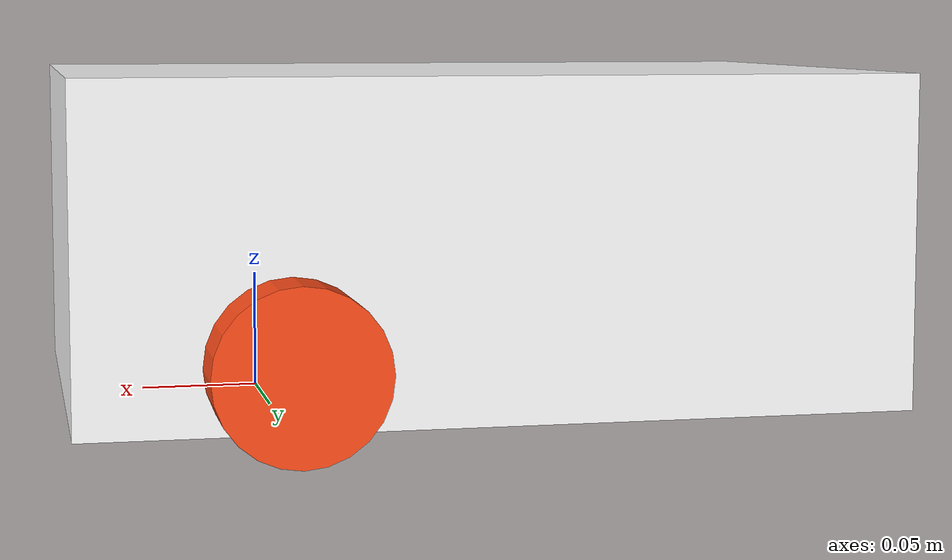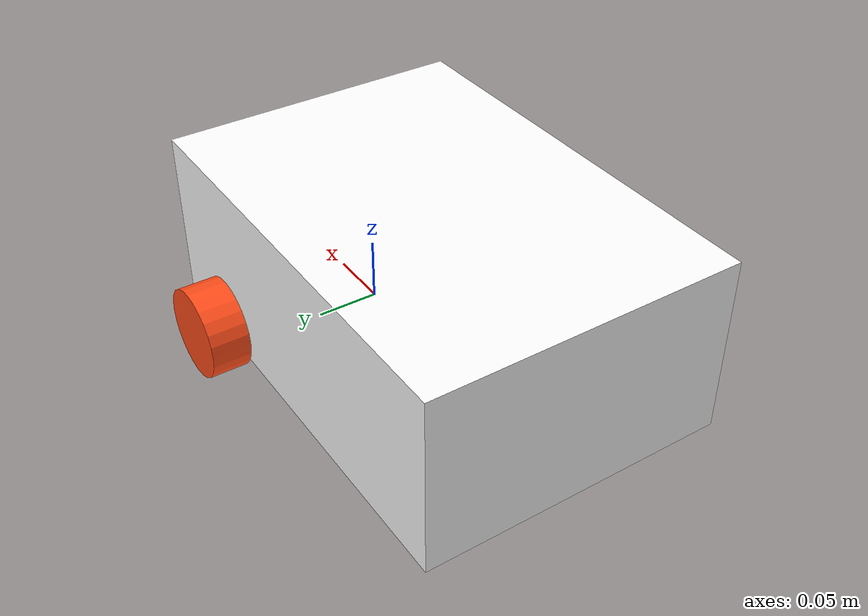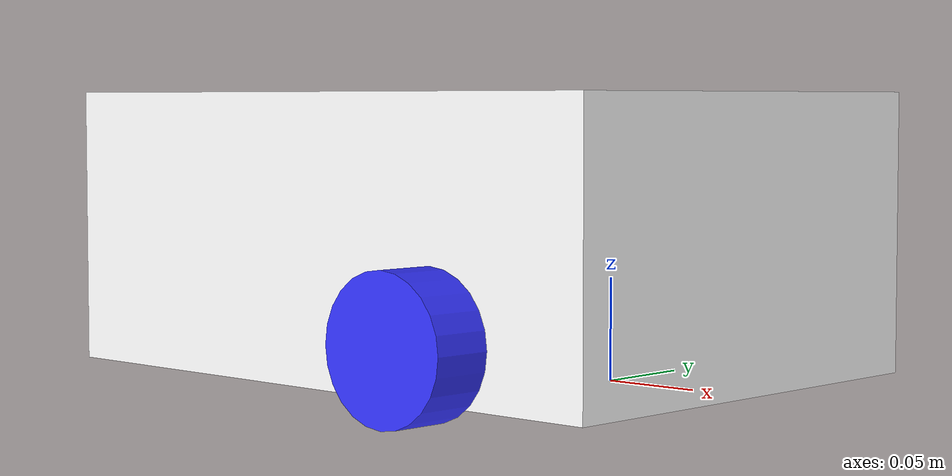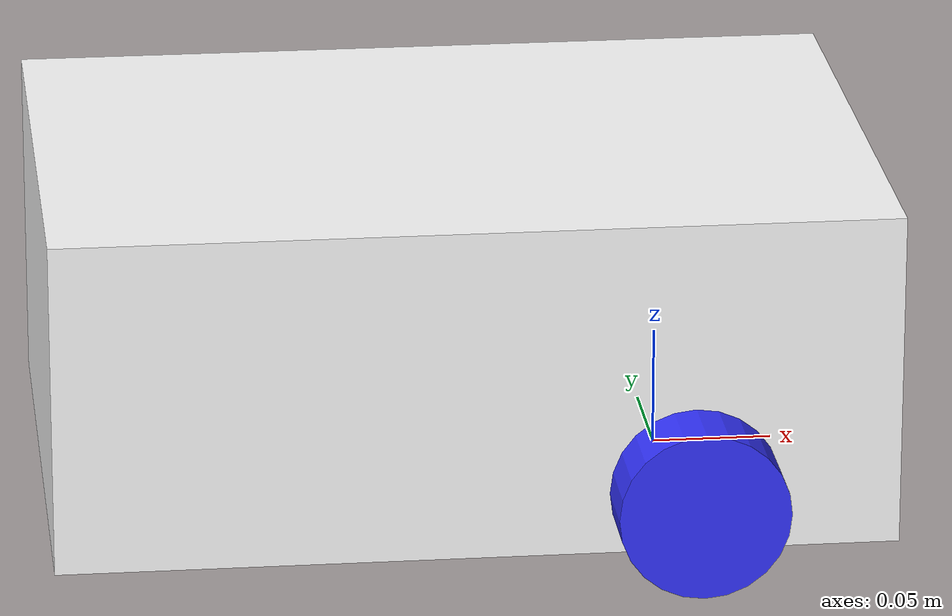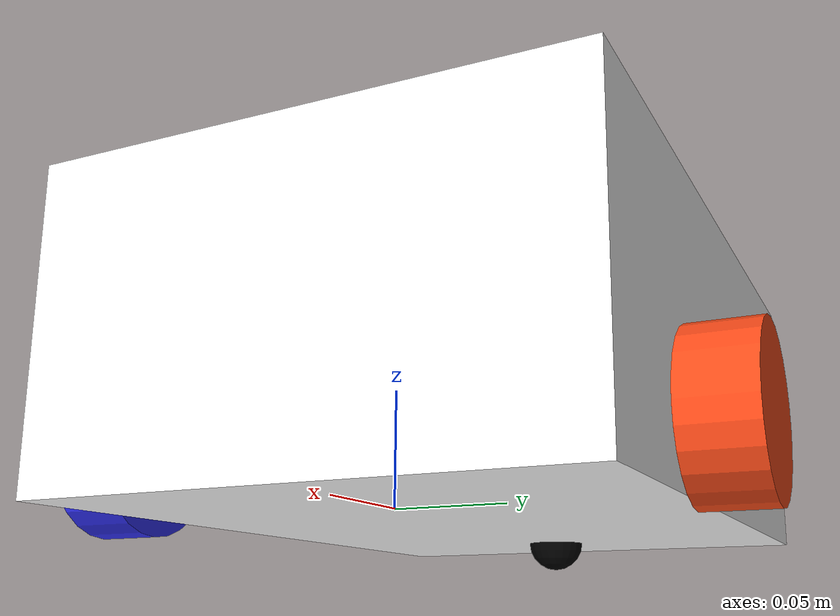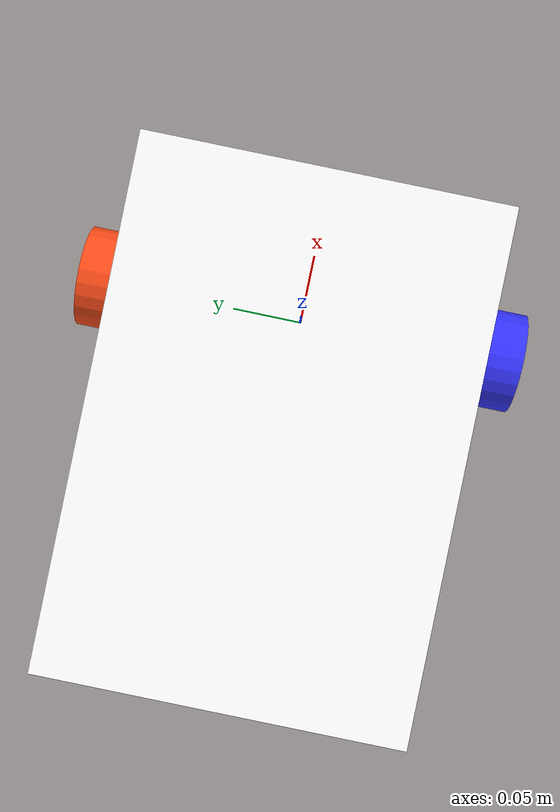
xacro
<?xml version="1.0"?>
<robot xmlns:xacro="http://www.ros.org/wiki/xacro" >

    <xacro:include filename="inertial_macros.xacro" />

    <!-- ========== ROBOT PARAMETERS ========== -->

    <!-- Chassis dimensions -->
    <xacro:property name="body_length" value="0.345"/> <!-- chasis_largo -->
    <xacro:property name="body_width" value="0.24"/> <!-- chasis_ancho -->
    <xacro:property name="body_height" value="0.14"/> <!-- chasis_alto -->
    <xacro:property name="body_mass" value="0.5"/> <!-- chasis_masa -->
    <xacro:property name="body_x_offset" value="0.26"/> <!-- chasis_desplazamiento_x -->

    <!-- Drive wheel properties -->
    <xacro:property name="drive_wheel_radius" value="0.035"/> <!-- rueda_radio -->
    <xacro:property name="drive_wheel_width" value="0.03"/> <!-- rueda_grosor -->
    <xacro:property name="drive_wheel_mass" value="0.1"/> <!-- rueda_masa -->
    <xacro:property name="wheel_base_width" value="0.14"/> <!-- rueda_separacion_y -->
    <xacro:property name="wheel_mount_height" value="0.028"/> <!-- rueda_altura_z -->

    <!-- Caster wheel properties -->
    <xacro:property name="caster_radius" value="0.015"/> <!-- rueda_loca_radio -->
    <xacro:property name="caster_mass" value="0.1"/> <!-- rueda_loca_masa -->
    <xacro:property name="caster_x_pos" value="0.065"/> <!-- rueda_loca_posicion_x -->
    <xacro:property name="caster_friction_coeff" value="0.001"/> <!-- rueda_loca_friccion -->

    <!-- Calculated values -->
    <xacro:property name="body_mid_x" value="${body_length/2}"/> <!-- chasis_centro_x -->
    <xacro:property name="body_mid_z" value="${body_height/2}"/> <!-- chasis_centro_z -->

    <!-- ========== MATERIALS ========== -->
    <material name="white">
        <color rgba="1 1 1 1" />
    </material>
    <material name="blue">
        <color rgba="0.2 0.2 1 1" />
    </material>
    <material name="orange">
        <color rgba="1 0.3 0.1 1" />
    </material>
    <material name="black">
        <color rgba="0 0 0 1" />
    </material>

    <!-- ========== LINKS AND JOINTS ========== -->

    <!-- BASE LINK-->
    <link name="base_link">
    </link>

    <!-- BASE FOOTPRINT LINK (Proyección Base Link en el suelo, para SLAM)-->

    <joint name="base_footprint_joint" type="fixed">
        <parent link="base_link" />
        <child link="base_footprint" />
        <origin xyz="0 0 0"/>
    </joint>

    <link name="base_footprint">
    </link>

    <!-- CHASSIS LINK-->
    <joint name="chassis_joint" type="fixed">
        <parent link="base_link" />
        <child link="chassis_link" />
        <origin xyz="-${body_x_offset} 0 0"/>
    </joint>

    <link name="chassis_link">
        <visual>
            <origin xyz="${body_mid_x} 0 ${body_mid_z}"/>
            <geometry>
                <box size="${body_length} ${body_width} ${body_height}"/>
            </geometry>
            <material name="white"/>
        </visual>
        <collision>
            <origin xyz="${body_mid_x} 0 ${body_mid_z}"/>
            <geometry>
                <box size="${body_length} ${body_width} ${body_height}"/>
            </geometry>
            <material name="white"/>
        </collision>
        <xacro:inertial_box mass="${body_mass}" x="${body_length}" y="${body_width}" z="${body_height}">
            <origin xyz="${body_mid_x} 0 ${body_mid_z}" rpy="0 0 0"/>
        </xacro:inertial_box>
    </link>

    <gazebo reference="chassis_link">
        <material>Gazebo/Orange</material>
    </gazebo>

    <!-- LEFT WHEEL LINK-->
    <joint name="left_wheel_joint" type="continuous">
        <parent link="base_link"/>
        <child link="left_wheel_link"/>
        <origin xyz="0 ${wheel_base_width} ${wheel_mount_height}" rpy="-${pi/2} 0 0"/>
        <axis xyz="0 0 1"/>
    </joint>

    <link name="left_wheel_link">
        <visual>
            <geometry>
                <cylinder radius="${drive_wheel_radius}" length="${drive_wheel_width}"/>
            </geometry>
            <material name="orange"/>
        </visual>
        <collision>
            <geometry>
                <cylinder radius="${drive_wheel_radius}" length="${drive_wheel_width}"/>
            </geometry>
            <material name="orange"/>
        </collision>
        <xacro:inertial_cylinder mass="${drive_wheel_mass}" length="${drive_wheel_width}" radius="${drive_wheel_radius}">
            <origin xyz="0 0 0" rpy="0 0 0"/>
        </xacro:inertial_cylinder>
    </link>

    <gazebo reference="left_wheel_link">
        <material>Gazebo/Blue</material>
    </gazebo>

    <!-- RIGHT WHEEL LINK-->
    <joint name="right_wheel_joint" type="continuous">
        <parent link="base_link"/>
        <child link="right_wheel_link"/>
        <origin xyz="0 -${wheel_base_width} ${wheel_mount_height}" rpy="${pi/2} 0 0"/>
        <axis xyz="0 0 -1"/>
    </joint>

    <link name="right_wheel_link">
        <visual>
            <geometry>
                <cylinder radius="${drive_wheel_radius}" length="${drive_wheel_width}"/>
            </geometry>
            <material name="blue"/>
        </visual>
        <collision>
            <geometry>
                <cylinder radius="${drive_wheel_radius}" length="${drive_wheel_width}"/>
            </geometry>
            <material name="blue"/>
        </collision>
        <xacro:inertial_cylinder mass="${drive_wheel_mass}" length="${drive_wheel_width}" radius="${drive_wheel_radius}">
            <origin xyz="0 0 0" rpy="0 0 0"/>
        </xacro:inertial_cylinder>
    </link>

    <gazebo reference="right_wheel_link">
        <material>Gazebo/Blue</material>
    </gazebo>

    <!-- CASTER WHEEL LINK-->
    <joint name="caster_wheel_joint" type="fixed">
        <parent link="chassis_link"/>
        <child link="caster_wheel_link"/>
        <origin xyz="${caster_x_pos} 0 0"/>
    </joint>

    <link name="caster_wheel_link">
        <visual>
            <geometry>
                <sphere radius="${caster_radius}"/>
            </geometry>
            <material name="black"/>
        </visual>
        <collision>
            <geometry>
                <sphere radius="${caster_radius}"/>
            </geometry>
            <material name="black"/>
        </collision>
        <xacro:inertial_sphere mass="${caster_mass}" radius="${caster_radius}">
            <origin xyz="0 0 0" rpy="0 0 0"/>
        </xacro:inertial_sphere>
    </link>

    <gazebo reference="caster_wheel_link">
        <material>Gazebo/Black</material>
        <mu1 value="${caster_friction_coeff}"/>
        <mu2 value="${caster_friction_coeff}"/>
    </gazebo>
</robot>
